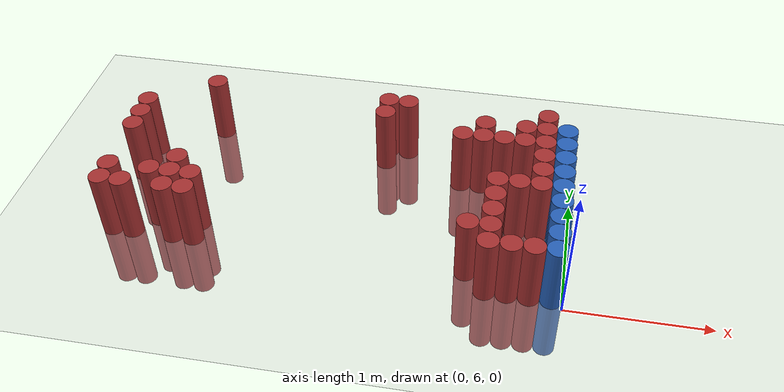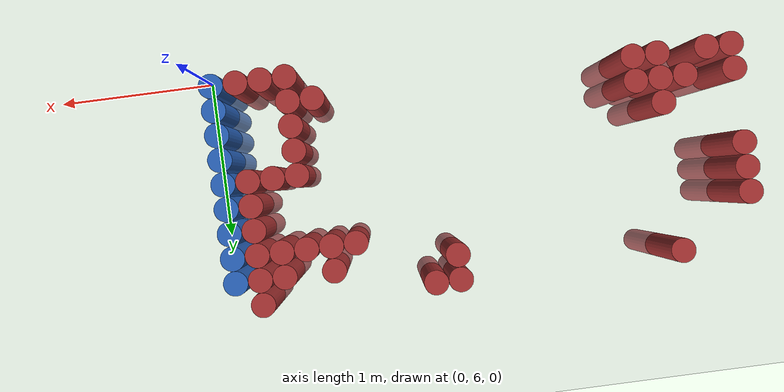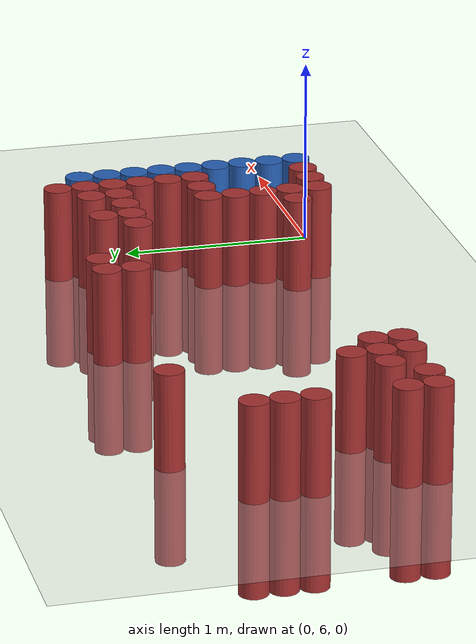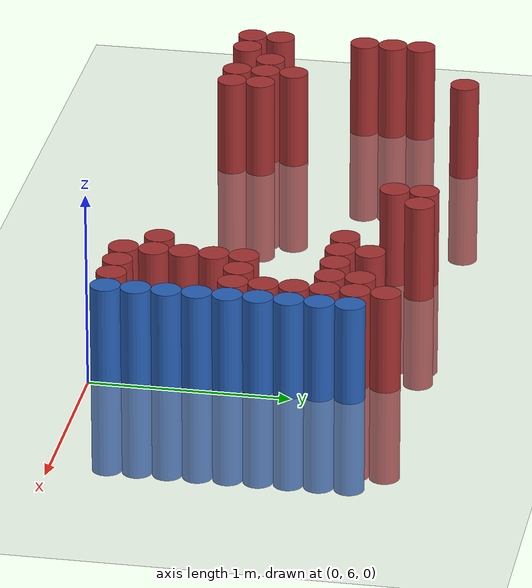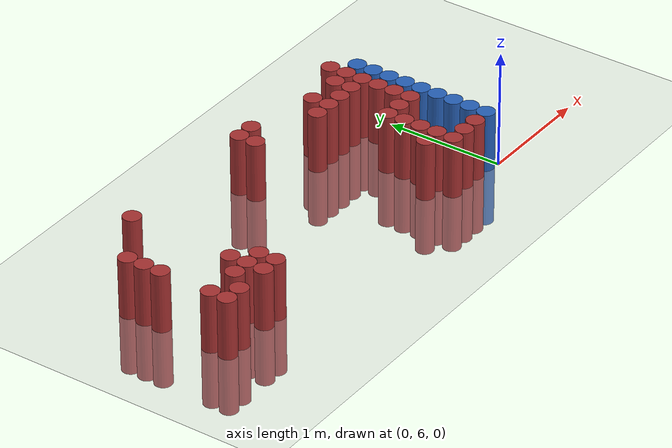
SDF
<sdf version="1.6">
 <world name="world_92">
  <model name="ground_plane">
   <static>1</static>
   <link name="link">
    <collision name="collision">
     <geometry><plane><normal>0 0 1</normal><size>100 100</size></plane></geometry>
     <surface><friction><ode><mu>100</mu><mu2>50</mu2></ode></friction></surface>
    </collision>
    <visual name="visual">
     <cast_shadows>0</cast_shadows>
     <geometry><plane><normal>0 0 1</normal><size>100 100</size></plane></geometry>
     <material>
      <script><uri>file://media/materials/scripts/gazebo.material</uri><name>Gazebo/Grey</name></script>
     </material>
    </visual>
   </link>
  </model>
  <model name="unit_cylinder_157">
   <static>1</static>
   <pose>-3.225000 6.225000 0.000000 0.000000 0.000000 0.000000</pose>
   <link name="link">
    <inertial>
     <mass>1</mass>
     <inertia><ixx>0.145833</ixx><ixy>0</ixy><ixz>0</ixz><iyy>0.145833</iyy><iyz>0</iyz><izz>0.125</izz></inertia>
    </inertial>
    <collision name="collision">
     <geometry><cylinder><radius>0.075000</radius><length>1</length></cylinder></geometry>
    </collision>
    <visual name="visual">
     <geometry><cylinder><radius>0.075000</radius><length>1</length></cylinder></geometry>
     <material>
      <ambient>0.648000 0.192000 0.192000 1</ambient>
      <diffuse>0.648000 0.192000 0.192000 1</diffuse>
     </material>
     <material>
      <script><name>Gazebo/Grey</name><uri>file://media/materials/scripts/gazebo.material</uri></script>
     </material>
    </visual>
   </link>
  </model>
  <model name="unit_cylinder_158">
   <static>1</static>
   <pose>-3.225000 6.375000 0.000000 0.000000 0.000000 0.000000</pose>
   <link name="link">
    <inertial>
     <mass>1</mass>
     <inertia><ixx>0.145833</ixx><ixy>0</ixy><ixz>0</ixz><iyy>0.145833</iyy><iyz>0</iyz><izz>0.125</izz></inertia>
    </inertial>
    <collision name="collision">
     <geometry><cylinder><radius>0.075000</radius><length>1</length></cylinder></geometry>
    </collision>
    <visual name="visual">
     <geometry><cylinder><radius>0.075000</radius><length>1</length></cylinder></geometry>
     <material>
      <ambient>0.648000 0.192000 0.192000 1</ambient>
      <diffuse>0.648000 0.192000 0.192000 1</diffuse>
     </material>
     <material>
      <script><name>Gazebo/Grey</name><uri>file://media/materials/scripts/gazebo.material</uri></script>
     </material>
    </visual>
   </link>
  </model>
  <model name="unit_cylinder_159">
   <static>1</static>
   <pose>-3.225000 6.825000 0.000000 0.000000 0.000000 0.000000</pose>
   <link name="link">
    <inertial>
     <mass>1</mass>
     <inertia><ixx>0.145833</ixx><ixy>0</ixy><ixz>0</ixz><iyy>0.145833</iyy><iyz>0</iyz><izz>0.125</izz></inertia>
    </inertial>
    <collision name="collision">
     <geometry><cylinder><radius>0.075000</radius><length>1</length></cylinder></geometry>
    </collision>
    <visual name="visual">
     <geometry><cylinder><radius>0.075000</radius><length>1</length></cylinder></geometry>
     <material>
      <ambient>0.648000 0.192000 0.192000 1</ambient>
      <diffuse>0.648000 0.192000 0.192000 1</diffuse>
     </material>
     <material>
      <script><name>Gazebo/Grey</name><uri>file://media/materials/scripts/gazebo.material</uri></script>
     </material>
    </visual>
   </link>
  </model>
  <model name="unit_cylinder_160">
   <static>1</static>
   <pose>-3.225000 6.975000 0.000000 0.000000 0.000000 0.000000</pose>
   <link name="link">
    <inertial>
     <mass>1</mass>
     <inertia><ixx>0.145833</ixx><ixy>0</ixy><ixz>0</ixz><iyy>0.145833</iyy><iyz>0</iyz><izz>0.125</izz></inertia>
    </inertial>
    <collision name="collision">
     <geometry><cylinder><radius>0.075000</radius><length>1</length></cylinder></geometry>
    </collision>
    <visual name="visual">
     <geometry><cylinder><radius>0.075000</radius><length>1</length></cylinder></geometry>
     <material>
      <ambient>0.648000 0.192000 0.192000 1</ambient>
      <diffuse>0.648000 0.192000 0.192000 1</diffuse>
     </material>
     <material>
      <script><name>Gazebo/Grey</name><uri>file://media/materials/scripts/gazebo.material</uri></script>
     </material>
    </visual>
   </link>
  </model>
  <model name="unit_cylinder_161">
   <static>1</static>
   <pose>-3.225000 7.125000 0.000000 0.000000 0.000000 0.000000</pose>
   <link name="link">
    <inertial>
     <mass>1</mass>
     <inertia><ixx>0.145833</ixx><ixy>0</ixy><ixz>0</ixz><iyy>0.145833</iyy><iyz>0</iyz><izz>0.125</izz></inertia>
    </inertial>
    <collision name="collision">
     <geometry><cylinder><radius>0.075000</radius><length>1</length></cylinder></geometry>
    </collision>
    <visual name="visual">
     <geometry><cylinder><radius>0.075000</radius><length>1</length></cylinder></geometry>
     <material>
      <ambient>0.648000 0.192000 0.192000 1</ambient>
      <diffuse>0.648000 0.192000 0.192000 1</diffuse>
     </material>
     <material>
      <script><name>Gazebo/Grey</name><uri>file://media/materials/scripts/gazebo.material</uri></script>
     </material>
    </visual>
   </link>
  </model>
  <model name="unit_cylinder_165">
   <static>1</static>
   <pose>-3.075000 6.225000 0.000000 0.000000 0.000000 0.000000</pose>
   <link name="link">
    <inertial>
     <mass>1</mass>
     <inertia><ixx>0.145833</ixx><ixy>0</ixy><ixz>0</ixz><iyy>0.145833</iyy><iyz>0</iyz><izz>0.125</izz></inertia>
    </inertial>
    <collision name="collision">
     <geometry><cylinder><radius>0.075000</radius><length>1</length></cylinder></geometry>
    </collision>
    <visual name="visual">
     <geometry><cylinder><radius>0.075000</radius><length>1</length></cylinder></geometry>
     <material>
      <ambient>0.648000 0.192000 0.192000 1</ambient>
      <diffuse>0.648000 0.192000 0.192000 1</diffuse>
     </material>
     <material>
      <script><name>Gazebo/Grey</name><uri>file://media/materials/scripts/gazebo.material</uri></script>
     </material>
    </visual>
   </link>
  </model>
  <model name="unit_cylinder_170">
   <static>1</static>
   <pose>-2.925000 6.375000 0.000000 0.000000 0.000000 0.000000</pose>
   <link name="link">
    <inertial>
     <mass>1</mass>
     <inertia><ixx>0.145833</ixx><ixy>0</ixy><ixz>0</ixz><iyy>0.145833</iyy><iyz>0</iyz><izz>0.125</izz></inertia>
    </inertial>
    <collision name="collision">
     <geometry><cylinder><radius>0.075000</radius><length>1</length></cylinder></geometry>
    </collision>
    <visual name="visual">
     <geometry><cylinder><radius>0.075000</radius><length>1</length></cylinder></geometry>
     <material>
      <ambient>0.648000 0.192000 0.192000 1</ambient>
      <diffuse>0.648000 0.192000 0.192000 1</diffuse>
     </material>
     <material>
      <script><name>Gazebo/Grey</name><uri>file://media/materials/scripts/gazebo.material</uri></script>
     </material>
    </visual>
   </link>
  </model>
  <model name="unit_cylinder_175">
   <static>1</static>
   <pose>-2.775000 6.225000 0.000000 0.000000 0.000000 0.000000</pose>
   <link name="link">
    <inertial>
     <mass>1</mass>
     <inertia><ixx>0.145833</ixx><ixy>0</ixy><ixz>0</ixz><iyy>0.145833</iyy><iyz>0</iyz><izz>0.125</izz></inertia>
    </inertial>
    <collision name="collision">
     <geometry><cylinder><radius>0.075000</radius><length>1</length></cylinder></geometry>
    </collision>
    <visual name="visual">
     <geometry><cylinder><radius>0.075000</radius><length>1</length></cylinder></geometry>
     <material>
      <ambient>0.648000 0.192000 0.192000 1</ambient>
      <diffuse>0.648000 0.192000 0.192000 1</diffuse>
     </material>
     <material>
      <script><name>Gazebo/Grey</name><uri>file://media/materials/scripts/gazebo.material</uri></script>
     </material>
    </visual>
   </link>
  </model>
  <model name="unit_cylinder_176">
   <static>1</static>
   <pose>-2.775000 6.375000 0.000000 0.000000 0.000000 0.000000</pose>
   <link name="link">
    <inertial>
     <mass>1</mass>
     <inertia><ixx>0.145833</ixx><ixy>0</ixy><ixz>0</ixz><iyy>0.145833</iyy><iyz>0</iyz><izz>0.125</izz></inertia>
    </inertial>
    <collision name="collision">
     <geometry><cylinder><radius>0.075000</radius><length>1</length></cylinder></geometry>
    </collision>
    <visual name="visual">
     <geometry><cylinder><radius>0.075000</radius><length>1</length></cylinder></geometry>
     <material>
      <ambient>0.648000 0.192000 0.192000 1</ambient>
      <diffuse>0.648000 0.192000 0.192000 1</diffuse>
     </material>
     <material>
      <script><name>Gazebo/Grey</name><uri>file://media/materials/scripts/gazebo.material</uri></script>
     </material>
    </visual>
   </link>
  </model>
  <model name="unit_cylinder_177">
   <static>1</static>
   <pose>-2.775000 6.525000 0.000000 0.000000 0.000000 0.000000</pose>
   <link name="link">
    <inertial>
     <mass>1</mass>
     <inertia><ixx>0.145833</ixx><ixy>0</ixy><ixz>0</ixz><iyy>0.145833</iyy><iyz>0</iyz><izz>0.125</izz></inertia>
    </inertial>
    <collision name="collision">
     <geometry><cylinder><radius>0.075000</radius><length>1</length></cylinder></geometry>
    </collision>
    <visual name="visual">
     <geometry><cylinder><radius>0.075000</radius><length>1</length></cylinder></geometry>
     <material>
      <ambient>0.648000 0.192000 0.192000 1</ambient>
      <diffuse>0.648000 0.192000 0.192000 1</diffuse>
     </material>
     <material>
      <script><name>Gazebo/Grey</name><uri>file://media/materials/scripts/gazebo.material</uri></script>
     </material>
    </visual>
   </link>
  </model>
  <model name="unit_cylinder_178">
   <static>1</static>
   <pose>-2.775000 7.425000 0.000000 0.000000 0.000000 0.000000</pose>
   <link name="link">
    <inertial>
     <mass>1</mass>
     <inertia><ixx>0.145833</ixx><ixy>0</ixy><ixz>0</ixz><iyy>0.145833</iyy><iyz>0</iyz><izz>0.125</izz></inertia>
    </inertial>
    <collision name="collision">
     <geometry><cylinder><radius>0.075000</radius><length>1</length></cylinder></geometry>
    </collision>
    <visual name="visual">
     <geometry><cylinder><radius>0.075000</radius><length>1</length></cylinder></geometry>
     <material>
      <ambient>0.648000 0.192000 0.192000 1</ambient>
      <diffuse>0.648000 0.192000 0.192000 1</diffuse>
     </material>
     <material>
      <script><name>Gazebo/Grey</name><uri>file://media/materials/scripts/gazebo.material</uri></script>
     </material>
    </visual>
   </link>
  </model>
  <model name="unit_cylinder_181">
   <static>1</static>
   <pose>-2.625000 6.225000 0.000000 0.000000 0.000000 0.000000</pose>
   <link name="link">
    <inertial>
     <mass>1</mass>
     <inertia><ixx>0.145833</ixx><ixy>0</ixy><ixz>0</ixz><iyy>0.145833</iyy><iyz>0</iyz><izz>0.125</izz></inertia>
    </inertial>
    <collision name="collision">
     <geometry><cylinder><radius>0.075000</radius><length>1</length></cylinder></geometry>
    </collision>
    <visual name="visual">
     <geometry><cylinder><radius>0.075000</radius><length>1</length></cylinder></geometry>
     <material>
      <ambient>0.648000 0.192000 0.192000 1</ambient>
      <diffuse>0.648000 0.192000 0.192000 1</diffuse>
     </material>
     <material>
      <script><name>Gazebo/Grey</name><uri>file://media/materials/scripts/gazebo.material</uri></script>
     </material>
    </visual>
   </link>
  </model>
  <model name="unit_cylinder_182">
   <static>1</static>
   <pose>-2.625000 6.375000 0.000000 0.000000 0.000000 0.000000</pose>
   <link name="link">
    <inertial>
     <mass>1</mass>
     <inertia><ixx>0.145833</ixx><ixy>0</ixy><ixz>0</ixz><iyy>0.145833</iyy><iyz>0</iyz><izz>0.125</izz></inertia>
    </inertial>
    <collision name="collision">
     <geometry><cylinder><radius>0.075000</radius><length>1</length></cylinder></geometry>
    </collision>
    <visual name="visual">
     <geometry><cylinder><radius>0.075000</radius><length>1</length></cylinder></geometry>
     <material>
      <ambient>0.648000 0.192000 0.192000 1</ambient>
      <diffuse>0.648000 0.192000 0.192000 1</diffuse>
     </material>
     <material>
      <script><name>Gazebo/Grey</name><uri>file://media/materials/scripts/gazebo.material</uri></script>
     </material>
    </visual>
   </link>
  </model>
  <model name="unit_cylinder_192">
   <static>1</static>
   <pose>-1.425000 7.275000 0.000000 0.000000 0.000000 0.000000</pose>
   <link name="link">
    <inertial>
     <mass>1</mass>
     <inertia><ixx>0.145833</ixx><ixy>0</ixy><ixz>0</ixz><iyy>0.145833</iyy><iyz>0</iyz><izz>0.125</izz></inertia>
    </inertial>
    <collision name="collision">
     <geometry><cylinder><radius>0.075000</radius><length>1</length></cylinder></geometry>
    </collision>
    <visual name="visual">
     <geometry><cylinder><radius>0.075000</radius><length>1</length></cylinder></geometry>
     <material>
      <ambient>0.648000 0.192000 0.192000 1</ambient>
      <diffuse>0.648000 0.192000 0.192000 1</diffuse>
     </material>
     <material>
      <script><name>Gazebo/Grey</name><uri>file://media/materials/scripts/gazebo.material</uri></script>
     </material>
    </visual>
   </link>
  </model>
  <model name="unit_cylinder_193">
   <static>1</static>
   <pose>-1.425000 7.425000 0.000000 0.000000 0.000000 0.000000</pose>
   <link name="link">
    <inertial>
     <mass>1</mass>
     <inertia><ixx>0.145833</ixx><ixy>0</ixy><ixz>0</ixz><iyy>0.145833</iyy><iyz>0</iyz><izz>0.125</izz></inertia>
    </inertial>
    <collision name="collision">
     <geometry><cylinder><radius>0.075000</radius><length>1</length></cylinder></geometry>
    </collision>
    <visual name="visual">
     <geometry><cylinder><radius>0.075000</radius><length>1</length></cylinder></geometry>
     <material>
      <ambient>0.648000 0.192000 0.192000 1</ambient>
      <diffuse>0.648000 0.192000 0.192000 1</diffuse>
     </material>
     <material>
      <script><name>Gazebo/Grey</name><uri>file://media/materials/scripts/gazebo.material</uri></script>
     </material>
    </visual>
   </link>
  </model>
  <model name="unit_cylinder_197">
   <static>1</static>
   <pose>-1.275000 7.425000 0.000000 0.000000 0.000000 0.000000</pose>
   <link name="link">
    <inertial>
     <mass>1</mass>
     <inertia><ixx>0.145833</ixx><ixy>0</ixy><ixz>0</ixz><iyy>0.145833</iyy><iyz>0</iyz><izz>0.125</izz></inertia>
    </inertial>
    <collision name="collision">
     <geometry><cylinder><radius>0.075000</radius><length>1</length></cylinder></geometry>
    </collision>
    <visual name="visual">
     <geometry><cylinder><radius>0.075000</radius><length>1</length></cylinder></geometry>
     <material>
      <ambient>0.648000 0.192000 0.192000 1</ambient>
      <diffuse>0.648000 0.192000 0.192000 1</diffuse>
     </material>
     <material>
      <script><name>Gazebo/Grey</name><uri>file://media/materials/scripts/gazebo.material</uri></script>
     </material>
    </visual>
   </link>
  </model>
  <model name="unit_cylinder_208">
   <static>1</static>
   <pose>-0.825000 7.125000 0.000000 0.000000 0.000000 0.000000</pose>
   <link name="link">
    <inertial>
     <mass>1</mass>
     <inertia><ixx>0.145833</ixx><ixy>0</ixy><ixz>0</ixz><iyy>0.145833</iyy><iyz>0</iyz><izz>0.125</izz></inertia>
    </inertial>
    <collision name="collision">
     <geometry><cylinder><radius>0.075000</radius><length>1</length></cylinder></geometry>
    </collision>
    <visual name="visual">
     <geometry><cylinder><radius>0.075000</radius><length>1</length></cylinder></geometry>
     <material>
      <ambient>0.648000 0.192000 0.192000 1</ambient>
      <diffuse>0.648000 0.192000 0.192000 1</diffuse>
     </material>
     <material>
      <script><name>Gazebo/Grey</name><uri>file://media/materials/scripts/gazebo.material</uri></script>
     </material>
    </visual>
   </link>
  </model>
  <model name="unit_cylinder_211">
   <static>1</static>
   <pose>-0.675000 6.225000 0.000000 0.000000 0.000000 0.000000</pose>
   <link name="link">
    <inertial>
     <mass>1</mass>
     <inertia><ixx>0.145833</ixx><ixy>0</ixy><ixz>0</ixz><iyy>0.145833</iyy><iyz>0</iyz><izz>0.125</izz></inertia>
    </inertial>
    <collision name="collision">
     <geometry><cylinder><radius>0.075000</radius><length>1</length></cylinder></geometry>
    </collision>
    <visual name="visual">
     <geometry><cylinder><radius>0.075000</radius><length>1</length></cylinder></geometry>
     <material>
      <ambient>0.648000 0.192000 0.192000 1</ambient>
      <diffuse>0.648000 0.192000 0.192000 1</diffuse>
     </material>
     <material>
      <script><name>Gazebo/Grey</name><uri>file://media/materials/scripts/gazebo.material</uri></script>
     </material>
    </visual>
   </link>
  </model>
  <model name="unit_cylinder_212">
   <static>1</static>
   <pose>-0.675000 7.125000 0.000000 0.000000 0.000000 0.000000</pose>
   <link name="link">
    <inertial>
     <mass>1</mass>
     <inertia><ixx>0.145833</ixx><ixy>0</ixy><ixz>0</ixz><iyy>0.145833</iyy><iyz>0</iyz><izz>0.125</izz></inertia>
    </inertial>
    <collision name="collision">
     <geometry><cylinder><radius>0.075000</radius><length>1</length></cylinder></geometry>
    </collision>
    <visual name="visual">
     <geometry><cylinder><radius>0.075000</radius><length>1</length></cylinder></geometry>
     <material>
      <ambient>0.648000 0.192000 0.192000 1</ambient>
      <diffuse>0.648000 0.192000 0.192000 1</diffuse>
     </material>
     <material>
      <script><name>Gazebo/Grey</name><uri>file://media/materials/scripts/gazebo.material</uri></script>
     </material>
    </visual>
   </link>
  </model>
  <model name="unit_cylinder_213">
   <static>1</static>
   <pose>-0.675000 7.275000 0.000000 0.000000 0.000000 0.000000</pose>
   <link name="link">
    <inertial>
     <mass>1</mass>
     <inertia><ixx>0.145833</ixx><ixy>0</ixy><ixz>0</ixz><iyy>0.145833</iyy><iyz>0</iyz><izz>0.125</izz></inertia>
    </inertial>
    <collision name="collision">
     <geometry><cylinder><radius>0.075000</radius><length>1</length></cylinder></geometry>
    </collision>
    <visual name="visual">
     <geometry><cylinder><radius>0.075000</radius><length>1</length></cylinder></geometry>
     <material>
      <ambient>0.648000 0.192000 0.192000 1</ambient>
      <diffuse>0.648000 0.192000 0.192000 1</diffuse>
     </material>
     <material>
      <script><name>Gazebo/Grey</name><uri>file://media/materials/scripts/gazebo.material</uri></script>
     </material>
    </visual>
   </link>
  </model>
  <model name="unit_cylinder_214">
   <static>1</static>
   <pose>-0.525000 6.075000 0.000000 0.000000 0.000000 0.000000</pose>
   <link name="link">
    <inertial>
     <mass>1</mass>
     <inertia><ixx>0.145833</ixx><ixy>0</ixy><ixz>0</ixz><iyy>0.145833</iyy><iyz>0</iyz><izz>0.125</izz></inertia>
    </inertial>
    <collision name="collision">
     <geometry><cylinder><radius>0.075000</radius><length>1</length></cylinder></geometry>
    </collision>
    <visual name="visual">
     <geometry><cylinder><radius>0.075000</radius><length>1</length></cylinder></geometry>
     <material>
      <ambient>0.648000 0.192000 0.192000 1</ambient>
      <diffuse>0.648000 0.192000 0.192000 1</diffuse>
     </material>
     <material>
      <script><name>Gazebo/Grey</name><uri>file://media/materials/scripts/gazebo.material</uri></script>
     </material>
    </visual>
   </link>
  </model>
  <model name="unit_cylinder_215">
   <static>1</static>
   <pose>-0.525000 6.225000 0.000000 0.000000 0.000000 0.000000</pose>
   <link name="link">
    <inertial>
     <mass>1</mass>
     <inertia><ixx>0.145833</ixx><ixy>0</ixy><ixz>0</ixz><iyy>0.145833</iyy><iyz>0</iyz><izz>0.125</izz></inertia>
    </inertial>
    <collision name="collision">
     <geometry><cylinder><radius>0.075000</radius><length>1</length></cylinder></geometry>
    </collision>
    <visual name="visual">
     <geometry><cylinder><radius>0.075000</radius><length>1</length></cylinder></geometry>
     <material>
      <ambient>0.648000 0.192000 0.192000 1</ambient>
      <diffuse>0.648000 0.192000 0.192000 1</diffuse>
     </material>
     <material>
      <script><name>Gazebo/Grey</name><uri>file://media/materials/scripts/gazebo.material</uri></script>
     </material>
    </visual>
   </link>
  </model>
  <model name="unit_cylinder_216">
   <static>1</static>
   <pose>-0.525000 6.375000 0.000000 0.000000 0.000000 0.000000</pose>
   <link name="link">
    <inertial>
     <mass>1</mass>
     <inertia><ixx>0.145833</ixx><ixy>0</ixy><ixz>0</ixz><iyy>0.145833</iyy><iyz>0</iyz><izz>0.125</izz></inertia>
    </inertial>
    <collision name="collision">
     <geometry><cylinder><radius>0.075000</radius><length>1</length></cylinder></geometry>
    </collision>
    <visual name="visual">
     <geometry><cylinder><radius>0.075000</radius><length>1</length></cylinder></geometry>
     <material>
      <ambient>0.648000 0.192000 0.192000 1</ambient>
      <diffuse>0.648000 0.192000 0.192000 1</diffuse>
     </material>
     <material>
      <script><name>Gazebo/Grey</name><uri>file://media/materials/scripts/gazebo.material</uri></script>
     </material>
    </visual>
   </link>
  </model>
  <model name="unit_cylinder_217">
   <static>1</static>
   <pose>-0.525000 6.525000 0.000000 0.000000 0.000000 0.000000</pose>
   <link name="link">
    <inertial>
     <mass>1</mass>
     <inertia><ixx>0.145833</ixx><ixy>0</ixy><ixz>0</ixz><iyy>0.145833</iyy><iyz>0</iyz><izz>0.125</izz></inertia>
    </inertial>
    <collision name="collision">
     <geometry><cylinder><radius>0.075000</radius><length>1</length></cylinder></geometry>
    </collision>
    <visual name="visual">
     <geometry><cylinder><radius>0.075000</radius><length>1</length></cylinder></geometry>
     <material>
      <ambient>0.648000 0.192000 0.192000 1</ambient>
      <diffuse>0.648000 0.192000 0.192000 1</diffuse>
     </material>
     <material>
      <script><name>Gazebo/Grey</name><uri>file://media/materials/scripts/gazebo.material</uri></script>
     </material>
    </visual>
   </link>
  </model>
  <model name="unit_cylinder_218">
   <static>1</static>
   <pose>-0.525000 6.675000 0.000000 0.000000 0.000000 0.000000</pose>
   <link name="link">
    <inertial>
     <mass>1</mass>
     <inertia><ixx>0.145833</ixx><ixy>0</ixy><ixz>0</ixz><iyy>0.145833</iyy><iyz>0</iyz><izz>0.125</izz></inertia>
    </inertial>
    <collision name="collision">
     <geometry><cylinder><radius>0.075000</radius><length>1</length></cylinder></geometry>
    </collision>
    <visual name="visual">
     <geometry><cylinder><radius>0.075000</radius><length>1</length></cylinder></geometry>
     <material>
      <ambient>0.648000 0.192000 0.192000 1</ambient>
      <diffuse>0.648000 0.192000 0.192000 1</diffuse>
     </material>
     <material>
      <script><name>Gazebo/Grey</name><uri>file://media/materials/scripts/gazebo.material</uri></script>
     </material>
    </visual>
   </link>
  </model>
  <model name="unit_cylinder_219">
   <static>1</static>
   <pose>-0.525000 7.125000 0.000000 0.000000 0.000000 0.000000</pose>
   <link name="link">
    <inertial>
     <mass>1</mass>
     <inertia><ixx>0.145833</ixx><ixy>0</ixy><ixz>0</ixz><iyy>0.145833</iyy><iyz>0</iyz><izz>0.125</izz></inertia>
    </inertial>
    <collision name="collision">
     <geometry><cylinder><radius>0.075000</radius><length>1</length></cylinder></geometry>
    </collision>
    <visual name="visual">
     <geometry><cylinder><radius>0.075000</radius><length>1</length></cylinder></geometry>
     <material>
      <ambient>0.648000 0.192000 0.192000 1</ambient>
      <diffuse>0.648000 0.192000 0.192000 1</diffuse>
     </material>
     <material>
      <script><name>Gazebo/Grey</name><uri>file://media/materials/scripts/gazebo.material</uri></script>
     </material>
    </visual>
   </link>
  </model>
  <model name="unit_cylinder_223">
   <static>1</static>
   <pose>-0.375000 6.075000 0.000000 0.000000 0.000000 0.000000</pose>
   <link name="link">
    <inertial>
     <mass>1</mass>
     <inertia><ixx>0.145833</ixx><ixy>0</ixy><ixz>0</ixz><iyy>0.145833</iyy><iyz>0</iyz><izz>0.125</izz></inertia>
    </inertial>
    <collision name="collision">
     <geometry><cylinder><radius>0.075000</radius><length>1</length></cylinder></geometry>
    </collision>
    <visual name="visual">
     <geometry><cylinder><radius>0.075000</radius><length>1</length></cylinder></geometry>
     <material>
      <ambient>0.648000 0.192000 0.192000 1</ambient>
      <diffuse>0.648000 0.192000 0.192000 1</diffuse>
     </material>
     <material>
      <script><name>Gazebo/Grey</name><uri>file://media/materials/scripts/gazebo.material</uri></script>
     </material>
    </visual>
   </link>
  </model>
  <model name="unit_cylinder_224">
   <static>1</static>
   <pose>-0.375000 6.675000 0.000000 0.000000 0.000000 0.000000</pose>
   <link name="link">
    <inertial>
     <mass>1</mass>
     <inertia><ixx>0.145833</ixx><ixy>0</ixy><ixz>0</ixz><iyy>0.145833</iyy><iyz>0</iyz><izz>0.125</izz></inertia>
    </inertial>
    <collision name="collision">
     <geometry><cylinder><radius>0.075000</radius><length>1</length></cylinder></geometry>
    </collision>
    <visual name="visual">
     <geometry><cylinder><radius>0.075000</radius><length>1</length></cylinder></geometry>
     <material>
      <ambient>0.648000 0.192000 0.192000 1</ambient>
      <diffuse>0.648000 0.192000 0.192000 1</diffuse>
     </material>
     <material>
      <script><name>Gazebo/Grey</name><uri>file://media/materials/scripts/gazebo.material</uri></script>
     </material>
    </visual>
   </link>
  </model>
  <model name="unit_cylinder_225">
   <static>1</static>
   <pose>-0.375000 7.125000 0.000000 0.000000 0.000000 0.000000</pose>
   <link name="link">
    <inertial>
     <mass>1</mass>
     <inertia><ixx>0.145833</ixx><ixy>0</ixy><ixz>0</ixz><iyy>0.145833</iyy><iyz>0</iyz><izz>0.125</izz></inertia>
    </inertial>
    <collision name="collision">
     <geometry><cylinder><radius>0.075000</radius><length>1</length></cylinder></geometry>
    </collision>
    <visual name="visual">
     <geometry><cylinder><radius>0.075000</radius><length>1</length></cylinder></geometry>
     <material>
      <ambient>0.648000 0.192000 0.192000 1</ambient>
      <diffuse>0.648000 0.192000 0.192000 1</diffuse>
     </material>
     <material>
      <script><name>Gazebo/Grey</name><uri>file://media/materials/scripts/gazebo.material</uri></script>
     </material>
    </visual>
   </link>
  </model>
  <model name="unit_cylinder_226">
   <static>1</static>
   <pose>-0.375000 7.275000 0.000000 0.000000 0.000000 0.000000</pose>
   <link name="link">
    <inertial>
     <mass>1</mass>
     <inertia><ixx>0.145833</ixx><ixy>0</ixy><ixz>0</ixz><iyy>0.145833</iyy><iyz>0</iyz><izz>0.125</izz></inertia>
    </inertial>
    <collision name="collision">
     <geometry><cylinder><radius>0.075000</radius><length>1</length></cylinder></geometry>
    </collision>
    <visual name="visual">
     <geometry><cylinder><radius>0.075000</radius><length>1</length></cylinder></geometry>
     <material>
      <ambient>0.648000 0.192000 0.192000 1</ambient>
      <diffuse>0.648000 0.192000 0.192000 1</diffuse>
     </material>
     <material>
      <script><name>Gazebo/Grey</name><uri>file://media/materials/scripts/gazebo.material</uri></script>
     </material>
    </visual>
   </link>
  </model>
  <model name="unit_cylinder_235">
   <static>1</static>
   <pose>-0.225000 6.075000 0.000000 0.000000 0.000000 0.000000</pose>
   <link name="link">
    <inertial>
     <mass>1</mass>
     <inertia><ixx>0.145833</ixx><ixy>0</ixy><ixz>0</ixz><iyy>0.145833</iyy><iyz>0</iyz><izz>0.125</izz></inertia>
    </inertial>
    <collision name="collision">
     <geometry><cylinder><radius>0.075000</radius><length>1</length></cylinder></geometry>
    </collision>
    <visual name="visual">
     <geometry><cylinder><radius>0.075000</radius><length>1</length></cylinder></geometry>
     <material>
      <ambient>0.648000 0.192000 0.192000 1</ambient>
      <diffuse>0.648000 0.192000 0.192000 1</diffuse>
     </material>
     <material>
      <script><name>Gazebo/Grey</name><uri>file://media/materials/scripts/gazebo.material</uri></script>
     </material>
    </visual>
   </link>
  </model>
  <model name="unit_cylinder_236">
   <static>1</static>
   <pose>-0.225000 6.675000 0.000000 0.000000 0.000000 0.000000</pose>
   <link name="link">
    <inertial>
     <mass>1</mass>
     <inertia><ixx>0.145833</ixx><ixy>0</ixy><ixz>0</ixz><iyy>0.145833</iyy><iyz>0</iyz><izz>0.125</izz></inertia>
    </inertial>
    <collision name="collision">
     <geometry><cylinder><radius>0.075000</radius><length>1</length></cylinder></geometry>
    </collision>
    <visual name="visual">
     <geometry><cylinder><radius>0.075000</radius><length>1</length></cylinder></geometry>
     <material>
      <ambient>0.648000 0.192000 0.192000 1</ambient>
      <diffuse>0.648000 0.192000 0.192000 1</diffuse>
     </material>
     <material>
      <script><name>Gazebo/Grey</name><uri>file://media/materials/scripts/gazebo.material</uri></script>
     </material>
    </visual>
   </link>
  </model>
  <model name="unit_cylinder_237">
   <static>1</static>
   <pose>-0.225000 6.825000 0.000000 0.000000 0.000000 0.000000</pose>
   <link name="link">
    <inertial>
     <mass>1</mass>
     <inertia><ixx>0.145833</ixx><ixy>0</ixy><ixz>0</ixz><iyy>0.145833</iyy><iyz>0</iyz><izz>0.125</izz></inertia>
    </inertial>
    <collision name="collision">
     <geometry><cylinder><radius>0.075000</radius><length>1</length></cylinder></geometry>
    </collision>
    <visual name="visual">
     <geometry><cylinder><radius>0.075000</radius><length>1</length></cylinder></geometry>
     <material>
      <ambient>0.648000 0.192000 0.192000 1</ambient>
      <diffuse>0.648000 0.192000 0.192000 1</diffuse>
     </material>
     <material>
      <script><name>Gazebo/Grey</name><uri>file://media/materials/scripts/gazebo.material</uri></script>
     </material>
    </visual>
   </link>
  </model>
  <model name="unit_cylinder_238">
   <static>1</static>
   <pose>-0.225000 6.975000 0.000000 0.000000 0.000000 0.000000</pose>
   <link name="link">
    <inertial>
     <mass>1</mass>
     <inertia><ixx>0.145833</ixx><ixy>0</ixy><ixz>0</ixz><iyy>0.145833</iyy><iyz>0</iyz><izz>0.125</izz></inertia>
    </inertial>
    <collision name="collision">
     <geometry><cylinder><radius>0.075000</radius><length>1</length></cylinder></geometry>
    </collision>
    <visual name="visual">
     <geometry><cylinder><radius>0.075000</radius><length>1</length></cylinder></geometry>
     <material>
      <ambient>0.648000 0.192000 0.192000 1</ambient>
      <diffuse>0.648000 0.192000 0.192000 1</diffuse>
     </material>
     <material>
      <script><name>Gazebo/Grey</name><uri>file://media/materials/scripts/gazebo.material</uri></script>
     </material>
    </visual>
   </link>
  </model>
  <model name="unit_cylinder_239">
   <static>1</static>
   <pose>-0.225000 7.125000 0.000000 0.000000 0.000000 0.000000</pose>
   <link name="link">
    <inertial>
     <mass>1</mass>
     <inertia><ixx>0.145833</ixx><ixy>0</ixy><ixz>0</ixz><iyy>0.145833</iyy><iyz>0</iyz><izz>0.125</izz></inertia>
    </inertial>
    <collision name="collision">
     <geometry><cylinder><radius>0.075000</radius><length>1</length></cylinder></geometry>
    </collision>
    <visual name="visual">
     <geometry><cylinder><radius>0.075000</radius><length>1</length></cylinder></geometry>
     <material>
      <ambient>0.648000 0.192000 0.192000 1</ambient>
      <diffuse>0.648000 0.192000 0.192000 1</diffuse>
     </material>
     <material>
      <script><name>Gazebo/Grey</name><uri>file://media/materials/scripts/gazebo.material</uri></script>
     </material>
    </visual>
   </link>
  </model>
  <model name="unit_cylinder_240">
   <static>1</static>
   <pose>-0.225000 7.275000 0.000000 0.000000 0.000000 0.000000</pose>
   <link name="link">
    <inertial>
     <mass>1</mass>
     <inertia><ixx>0.145833</ixx><ixy>0</ixy><ixz>0</ixz><iyy>0.145833</iyy><iyz>0</iyz><izz>0.125</izz></inertia>
    </inertial>
    <collision name="collision">
     <geometry><cylinder><radius>0.075000</radius><length>1</length></cylinder></geometry>
    </collision>
    <visual name="visual">
     <geometry><cylinder><radius>0.075000</radius><length>1</length></cylinder></geometry>
     <material>
      <ambient>0.648000 0.192000 0.192000 1</ambient>
      <diffuse>0.648000 0.192000 0.192000 1</diffuse>
     </material>
     <material>
      <script><name>Gazebo/Grey</name><uri>file://media/materials/scripts/gazebo.material</uri></script>
     </material>
    </visual>
   </link>
  </model>
  <model name="unit_cylinder_241">
   <static>1</static>
   <pose>-0.225000 7.425000 0.000000 0.000000 0.000000 0.000000</pose>
   <link name="link">
    <inertial>
     <mass>1</mass>
     <inertia><ixx>0.145833</ixx><ixy>0</ixy><ixz>0</ixz><iyy>0.145833</iyy><iyz>0</iyz><izz>0.125</izz></inertia>
    </inertial>
    <collision name="collision">
     <geometry><cylinder><radius>0.075000</radius><length>1</length></cylinder></geometry>
    </collision>
    <visual name="visual">
     <geometry><cylinder><radius>0.075000</radius><length>1</length></cylinder></geometry>
     <material>
      <ambient>0.648000 0.192000 0.192000 1</ambient>
      <diffuse>0.648000 0.192000 0.192000 1</diffuse>
     </material>
     <material>
      <script><name>Gazebo/Grey</name><uri>file://media/materials/scripts/gazebo.material</uri></script>
     </material>
    </visual>
   </link>
  </model>
  <model name="unit_cylinder_253">
   <static>1</static>
   <pose>-0.075000 6.075000 0.000000 0.000000 0.000000 0.000000</pose>
   <link name="link">
    <inertial>
     <mass>1</mass>
     <inertia><ixx>0.145833</ixx><ixy>0</ixy><ixz>0</ixz><iyy>0.145833</iyy><iyz>0</iyz><izz>0.125</izz></inertia>
    </inertial>
    <collision name="collision">
     <geometry><cylinder><radius>0.075000</radius><length>1</length></cylinder></geometry>
    </collision>
    <visual name="visual">
     <geometry><cylinder><radius>0.075000</radius><length>1</length></cylinder></geometry>
     <material>
      <ambient>0.152000 0.379000 0.720000 1</ambient>
      <diffuse>0.152000 0.379000 0.720000 1</diffuse>
     </material>
     <material>
      <script><name>Gazebo/Grey</name><uri>file://media/materials/scripts/gazebo.material</uri></script>
     </material>
    </visual>
   </link>
  </model>
  <model name="unit_cylinder_254">
   <static>1</static>
   <pose>-0.075000 6.225000 0.000000 0.000000 0.000000 0.000000</pose>
   <link name="link">
    <inertial>
     <mass>1</mass>
     <inertia><ixx>0.145833</ixx><ixy>0</ixy><ixz>0</ixz><iyy>0.145833</iyy><iyz>0</iyz><izz>0.125</izz></inertia>
    </inertial>
    <collision name="collision">
     <geometry><cylinder><radius>0.075000</radius><length>1</length></cylinder></geometry>
    </collision>
    <visual name="visual">
     <geometry><cylinder><radius>0.075000</radius><length>1</length></cylinder></geometry>
     <material>
      <ambient>0.152000 0.379000 0.720000 1</ambient>
      <diffuse>0.152000 0.379000 0.720000 1</diffuse>
     </material>
     <material>
      <script><name>Gazebo/Grey</name><uri>file://media/materials/scripts/gazebo.material</uri></script>
     </material>
    </visual>
   </link>
  </model>
  <model name="unit_cylinder_255">
   <static>1</static>
   <pose>-0.075000 6.375000 0.000000 0.000000 0.000000 0.000000</pose>
   <link name="link">
    <inertial>
     <mass>1</mass>
     <inertia><ixx>0.145833</ixx><ixy>0</ixy><ixz>0</ixz><iyy>0.145833</iyy><iyz>0</iyz><izz>0.125</izz></inertia>
    </inertial>
    <collision name="collision">
     <geometry><cylinder><radius>0.075000</radius><length>1</length></cylinder></geometry>
    </collision>
    <visual name="visual">
     <geometry><cylinder><radius>0.075000</radius><length>1</length></cylinder></geometry>
     <material>
      <ambient>0.152000 0.379000 0.720000 1</ambient>
      <diffuse>0.152000 0.379000 0.720000 1</diffuse>
     </material>
     <material>
      <script><name>Gazebo/Grey</name><uri>file://media/materials/scripts/gazebo.material</uri></script>
     </material>
    </visual>
   </link>
  </model>
  <model name="unit_cylinder_256">
   <static>1</static>
   <pose>-0.075000 6.525000 0.000000 0.000000 0.000000 0.000000</pose>
   <link name="link">
    <inertial>
     <mass>1</mass>
     <inertia><ixx>0.145833</ixx><ixy>0</ixy><ixz>0</ixz><iyy>0.145833</iyy><iyz>0</iyz><izz>0.125</izz></inertia>
    </inertial>
    <collision name="collision">
     <geometry><cylinder><radius>0.075000</radius><length>1</length></cylinder></geometry>
    </collision>
    <visual name="visual">
     <geometry><cylinder><radius>0.075000</radius><length>1</length></cylinder></geometry>
     <material>
      <ambient>0.152000 0.379000 0.720000 1</ambient>
      <diffuse>0.152000 0.379000 0.720000 1</diffuse>
     </material>
     <material>
      <script><name>Gazebo/Grey</name><uri>file://media/materials/scripts/gazebo.material</uri></script>
     </material>
    </visual>
   </link>
  </model>
  <model name="unit_cylinder_257">
   <static>1</static>
   <pose>-0.075000 6.675000 0.000000 0.000000 0.000000 0.000000</pose>
   <link name="link">
    <inertial>
     <mass>1</mass>
     <inertia><ixx>0.145833</ixx><ixy>0</ixy><ixz>0</ixz><iyy>0.145833</iyy><iyz>0</iyz><izz>0.125</izz></inertia>
    </inertial>
    <collision name="collision">
     <geometry><cylinder><radius>0.075000</radius><length>1</length></cylinder></geometry>
    </collision>
    <visual name="visual">
     <geometry><cylinder><radius>0.075000</radius><length>1</length></cylinder></geometry>
     <material>
      <ambient>0.152000 0.379000 0.720000 1</ambient>
      <diffuse>0.152000 0.379000 0.720000 1</diffuse>
     </material>
     <material>
      <script><name>Gazebo/Grey</name><uri>file://media/materials/scripts/gazebo.material</uri></script>
     </material>
    </visual>
   </link>
  </model>
  <model name="unit_cylinder_258">
   <static>1</static>
   <pose>-0.075000 6.825000 0.000000 0.000000 0.000000 0.000000</pose>
   <link name="link">
    <inertial>
     <mass>1</mass>
     <inertia><ixx>0.145833</ixx><ixy>0</ixy><ixz>0</ixz><iyy>0.145833</iyy><iyz>0</iyz><izz>0.125</izz></inertia>
    </inertial>
    <collision name="collision">
     <geometry><cylinder><radius>0.075000</radius><length>1</length></cylinder></geometry>
    </collision>
    <visual name="visual">
     <geometry><cylinder><radius>0.075000</radius><length>1</length></cylinder></geometry>
     <material>
      <ambient>0.152000 0.379000 0.720000 1</ambient>
      <diffuse>0.152000 0.379000 0.720000 1</diffuse>
     </material>
     <material>
      <script><name>Gazebo/Grey</name><uri>file://media/materials/scripts/gazebo.material</uri></script>
     </material>
    </visual>
   </link>
  </model>
  <model name="unit_cylinder_259">
   <static>1</static>
   <pose>-0.075000 6.975000 0.000000 0.000000 0.000000 0.000000</pose>
   <link name="link">
    <inertial>
     <mass>1</mass>
     <inertia><ixx>0.145833</ixx><ixy>0</ixy><ixz>0</ixz><iyy>0.145833</iyy><iyz>0</iyz><izz>0.125</izz></inertia>
    </inertial>
    <collision name="collision">
     <geometry><cylinder><radius>0.075000</radius><length>1</length></cylinder></geometry>
    </collision>
    <visual name="visual">
     <geometry><cylinder><radius>0.075000</radius><length>1</length></cylinder></geometry>
     <material>
      <ambient>0.152000 0.379000 0.720000 1</ambient>
      <diffuse>0.152000 0.379000 0.720000 1</diffuse>
     </material>
     <material>
      <script><name>Gazebo/Grey</name><uri>file://media/materials/scripts/gazebo.material</uri></script>
     </material>
    </visual>
   </link>
  </model>
  <model name="unit_cylinder_260">
   <static>1</static>
   <pose>-0.075000 7.125000 0.000000 0.000000 0.000000 0.000000</pose>
   <link name="link">
    <inertial>
     <mass>1</mass>
     <inertia><ixx>0.145833</ixx><ixy>0</ixy><ixz>0</ixz><iyy>0.145833</iyy><iyz>0</iyz><izz>0.125</izz></inertia>
    </inertial>
    <collision name="collision">
     <geometry><cylinder><radius>0.075000</radius><length>1</length></cylinder></geometry>
    </collision>
    <visual name="visual">
     <geometry><cylinder><radius>0.075000</radius><length>1</length></cylinder></geometry>
     <material>
      <ambient>0.152000 0.379000 0.720000 1</ambient>
      <diffuse>0.152000 0.379000 0.720000 1</diffuse>
     </material>
     <material>
      <script><name>Gazebo/Grey</name><uri>file://media/materials/scripts/gazebo.material</uri></script>
     </material>
    </visual>
   </link>
  </model>
  <model name="unit_cylinder_261">
   <static>1</static>
   <pose>-0.075000 7.275000 0.000000 0.000000 0.000000 0.000000</pose>
   <link name="link">
    <inertial>
     <mass>1</mass>
     <inertia><ixx>0.145833</ixx><ixy>0</ixy><ixz>0</ixz><iyy>0.145833</iyy><iyz>0</iyz><izz>0.125</izz></inertia>
    </inertial>
    <collision name="collision">
     <geometry><cylinder><radius>0.075000</radius><length>1</length></cylinder></geometry>
    </collision>
    <visual name="visual">
     <geometry><cylinder><radius>0.075000</radius><length>1</length></cylinder></geometry>
     <material>
      <ambient>0.152000 0.379000 0.720000 1</ambient>
      <diffuse>0.152000 0.379000 0.720000 1</diffuse>
     </material>
     <material>
      <script><name>Gazebo/Grey</name><uri>file://media/materials/scripts/gazebo.material</uri></script>
     </material>
    </visual>
   </link>
  </model>
 </world>
</sdf>
